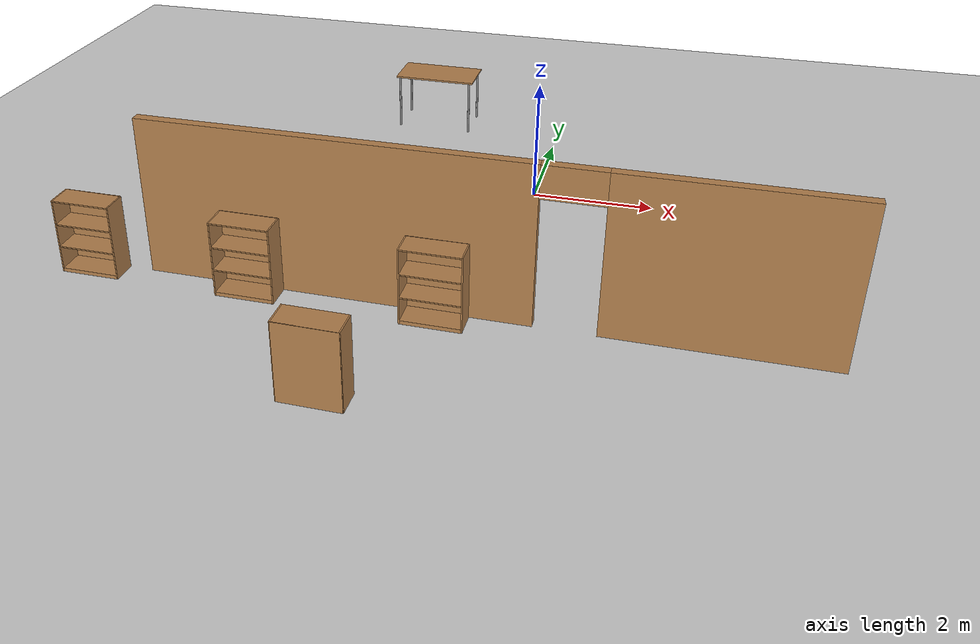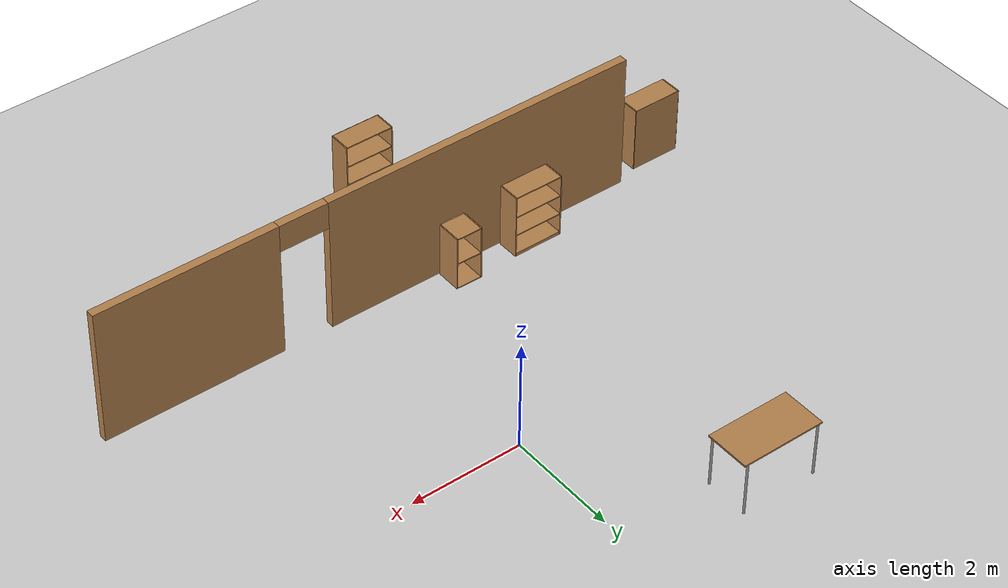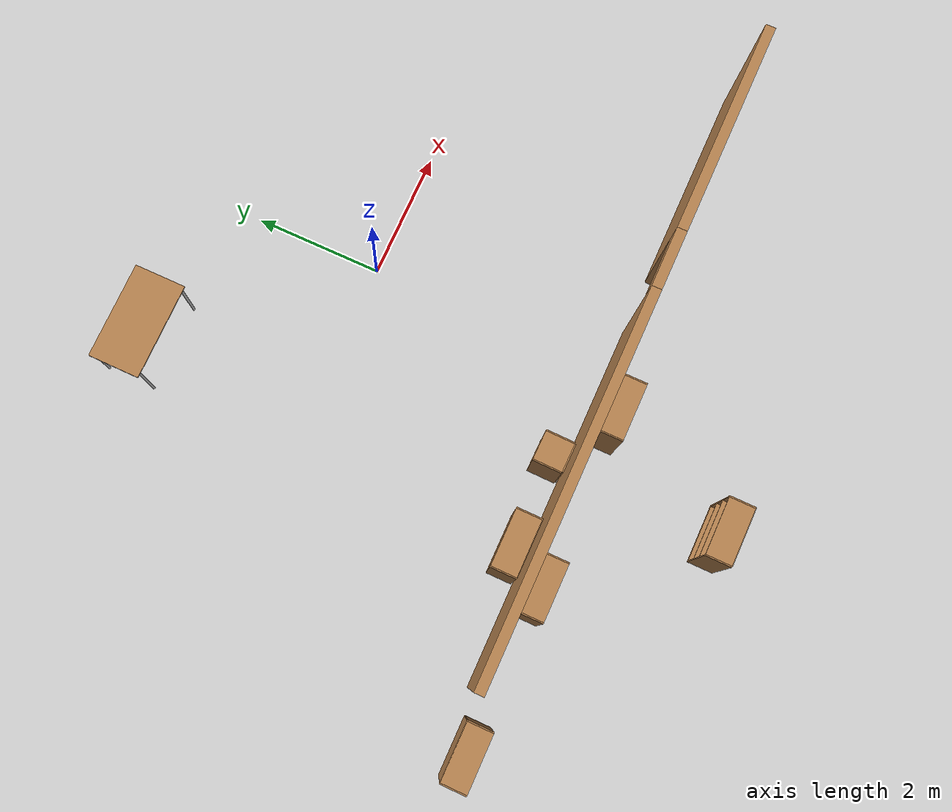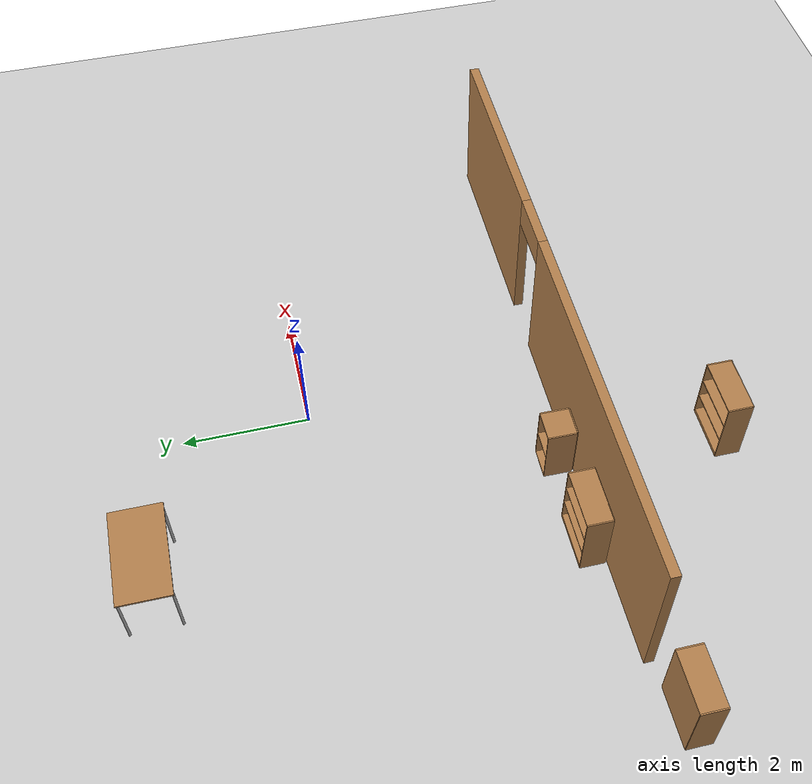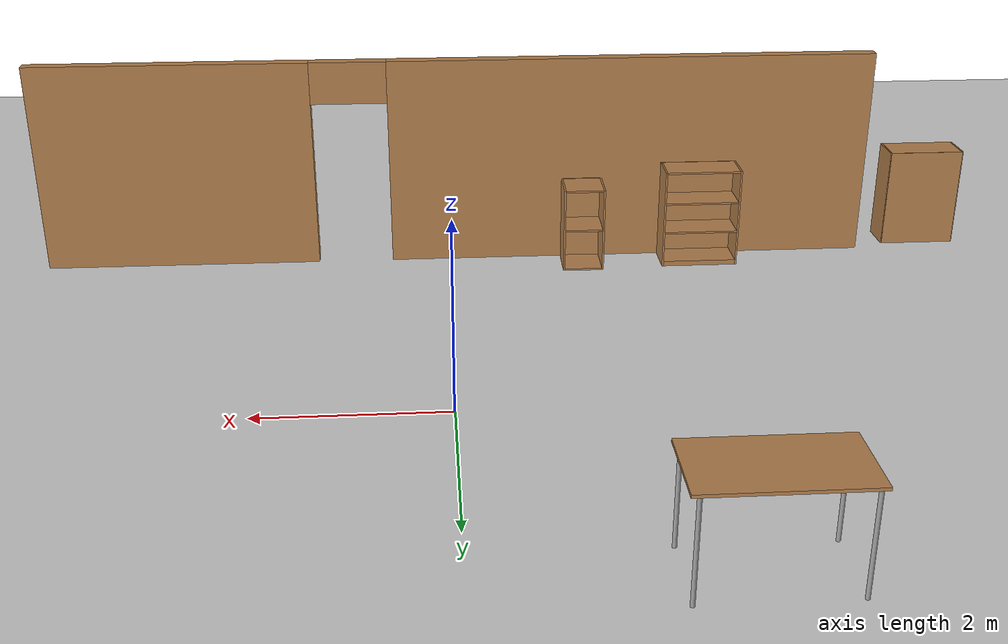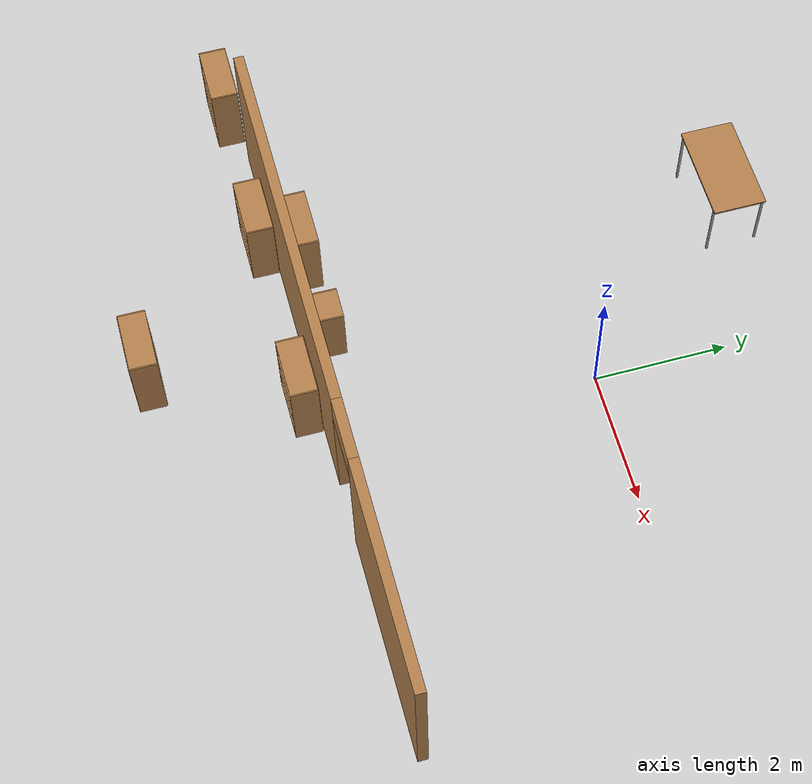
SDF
<sdf version="1.6">
 <world name="default">
  <model name="ground_plane">
   <static>1</static>
   <link name="link">
    <collision name="collision">
     <geometry><plane><normal>0 0 1</normal><size>100 100</size></plane></geometry>
     <surface>
      <contact><collide_bitmask>65535</collide_bitmask></contact>
      <friction><ode><mu>100</mu><mu2>50</mu2></ode></friction>
     </surface>
    </collision>
    <visual name="visual">
     <cast_shadows>0</cast_shadows>
     <geometry><plane><normal>0 0 1</normal><size>100 100</size></plane></geometry>
     <material>
      <script><uri>file://media/materials/scripts/gazebo.material</uri><name>Gazebo/Grey</name></script>
     </material>
    </visual>
   </link>
  </model>
  <model name="test">
   <pose>-0.158987 -3.9109 0 0 -0 0</pose>
   <link name="Wall_1">
    <visual name="Wall_1_Visual_0">
     <pose>-2.08639 0 1.25 0 -0 0</pose>
     <geometry><box><size>5.82721 0.15 2.5</size></box></geometry>
     <material>
      <script><uri>file://media/materials/scripts/gazebo.material</uri><name>Gazebo/Wood</name></script>
      <ambient>1 1 1 1</ambient>
     </material>
     <meta><layer>0</layer></meta>
    </visual>
    <collision name="Wall_1_Collision_0">
     <geometry><box><size>5.82721 0.15 2.5</size></box></geometry>
     <pose>-2.08639 0 1.25 0 -0 0</pose>
    </collision>
    <visual name="Wall_1_Visual_1">
     <pose>3.36361 0 1.25 0 -0 0</pose>
     <geometry><box><size>3.27278 0.15 2.5</size></box></geometry>
     <material>
      <script><uri>file://media/materials/scripts/gazebo.material</uri><name>Gazebo/Wood</name></script>
      <ambient>1 1 1 1</ambient>
     </material>
     <meta><layer>0</layer></meta>
    </visual>
    <collision name="Wall_1_Collision_1">
     <geometry><box><size>3.27278 0.15 2.5</size></box></geometry>
     <pose>3.36361 0 1.25 0 -0 0</pose>
    </collision>
    <visual name="Wall_1_Visual_2">
     <pose>1.27721 0 2.25 0 -0 0</pose>
     <geometry><box><size>0.9 0.15 0.5</size></box></geometry>
     <material>
      <script><uri>file://media/materials/scripts/gazebo.material</uri><name>Gazebo/Wood</name></script>
      <ambient>1 1 1 1</ambient>
     </material>
     <meta><layer>0</layer></meta>
    </visual>
    <collision name="Wall_1_Collision_2">
     <geometry><box><size>0.9 0.15 0.5</size></box></geometry>
     <pose>1.27721 0 2.25 0 -0 0</pose>
    </collision>
   </link>
   <static>1</static>
  </model>
  <model name="cabinet_2">
   <static>1</static>
   <link name="cabinet_bottom_plate">
    <inertial>
     <pose>0 0 -1 0 -0 0</pose>
     <inertia><ixx>2.05</ixx><ixy>0</ixy><ixz>0</ixz><iyy>2.05</iyy><iyz>0</iyz><izz>2.05</izz></inertia>
     <mass>25</mass>
    </inertial>
    <collision name="cabinet_bottom_plate_geom">
     <pose>0 0 0.01 0 -0 0</pose>
     <geometry><box><size>0.45 0.45 0.02</size></box></geometry>
    </collision>
    <visual name="cabinet_bottom_plate_geom_visual">
     <pose>0 0 0.01 0 -0 0</pose>
     <geometry><box><size>0.45 0.45 0.02</size></box></geometry>
     <material>
      <script><uri>file://media/materials/scripts/gazebo.material</uri><name>Gazebo/Wood</name></script>
     </material>
    </visual>
    <collision name="cabinet_bottom_plate_geom_cabinet_back_plate">
     <pose>0.235 0 0.51 0 -0 0</pose>
     <geometry><box><size>0.02 0.45 1.02</size></box></geometry>
    </collision>
    <visual name="cabinet_bottom_plate_geom_cabinet_back_plate_visual">
     <pose>0.235 0 0.51 0 -0 0</pose>
     <geometry><box><size>0.02 0.45 1.02</size></box></geometry>
     <material>
      <script><uri>file://media/materials/scripts/gazebo.material</uri><name>Gazebo/Wood</name></script>
     </material>
    </visual>
    <collision name="cabinet_bottom_plate_geom_cabinet_left_plate">
     <pose>0 0.235 0.51 0 -0 0</pose>
     <geometry><box><size>0.45 0.02 1.02</size></box></geometry>
    </collision>
    <visual name="cabinet_bottom_plate_geom_cabinet_left_plate_visual">
     <pose>0 0.235 0.51 0 -0 0</pose>
     <geometry><box><size>0.45 0.02 1.02</size></box></geometry>
     <material>
      <script><uri>file://media/materials/scripts/gazebo.material</uri><name>Gazebo/Wood</name></script>
     </material>
    </visual>
    <collision name="cabinet_bottom_plate_geom_cabinet_middle_plate">
     <pose>0 0 0.51 0 -0 0</pose>
     <geometry><box><size>0.45 0.45 0.02</size></box></geometry>
    </collision>
    <visual name="cabinet_bottom_plate_geom_cabinet_middle_plate_visual">
     <pose>0 0 0.51 0 -0 0</pose>
     <geometry><box><size>0.45 0.45 0.02</size></box></geometry>
     <material>
      <script><uri>file://media/materials/scripts/gazebo.material</uri><name>Gazebo/Wood</name></script>
     </material>
    </visual>
    <collision name="cabinet_bottom_plate_geom_cabinet_right_plate">
     <pose>0 -0.235 0.51 0 -0 0</pose>
     <geometry><box><size>0.45 0.02 1.02</size></box></geometry>
    </collision>
    <visual name="cabinet_bottom_plate_geom_cabinet_right_plate_visual">
     <pose>0 -0.235 0.51 0 -0 0</pose>
     <geometry><box><size>0.45 0.02 1.02</size></box></geometry>
     <material>
      <script><uri>file://media/materials/scripts/gazebo.material</uri><name>Gazebo/Wood</name></script>
     </material>
    </visual>
    <collision name="cabinet_bottom_plate_geom_cabinet_top_plate">
     <pose>0 0 1.01 0 -0 0</pose>
     <geometry><box><size>0.45 0.45 0.02</size></box></geometry>
    </collision>
    <visual name="cabinet_bottom_plate_geom_cabinet_top_plate_visual">
     <pose>0 0 1.01 0 -0 0</pose>
     <geometry><box><size>0.45 0.45 0.02</size></box></geometry>
     <material>
      <script><uri>file://media/materials/scripts/gazebo.material</uri><name>Gazebo/Wood</name></script>
     </material>
    </visual>
   </link>
   <pose>-1.64879 -3.58023 0 0 0 -1.58489</pose>
  </model>
  <model name="bookshelf_2">
   <static>1</static>
   <link name="link">
    <inertial><mass>1</mass></inertial>
    <collision name="back">
     <pose>0 0.005 0.6 0 -0 0</pose>
     <geometry><box><size>0.9 0.01 1.2</size></box></geometry>
    </collision>
    <visual name="visual1">
     <pose>0 0.005 0.6 0 -0 0</pose>
     <geometry><box><size>0.9 0.01 1.2</size></box></geometry>
     <material>
      <script><uri>file://media/materials/scripts/gazebo.material</uri><name>Gazebo/Wood</name></script>
     </material>
    </visual>
    <collision name="left_side">
     <pose>0.45 -0.195 0.6 0 -0 0</pose>
     <geometry><box><size>0.02 0.4 1.2</size></box></geometry>
    </collision>
    <visual name="visual2">
     <pose>0.45 -0.195 0.6 0 -0 0</pose>
     <geometry><box><size>0.02 0.4 1.2</size></box></geometry>
     <material>
      <script><uri>file://media/materials/scripts/gazebo.material</uri><name>Gazebo/Wood</name></script>
     </material>
    </visual>
    <collision name="right_side">
     <pose>-0.45 -0.195 0.6 0 -0 0</pose>
     <geometry><box><size>0.02 0.4 1.2</size></box></geometry>
    </collision>
    <visual name="visual3">
     <pose>-0.45 -0.195 0.6 0 -0 0</pose>
     <geometry><box><size>0.02 0.4 1.2</size></box></geometry>
     <material>
      <script><uri>file://media/materials/scripts/gazebo.material</uri><name>Gazebo/Wood</name></script>
     </material>
    </visual>
    <collision name="bottom">
     <pose>0 -0.195 0.03 0 -0 0</pose>
     <geometry><box><size>0.88 0.4 0.06</size></box></geometry>
    </collision>
    <visual name="visual4">
     <pose>0 -0.195 0.03 0 -0 0</pose>
     <geometry><box><size>0.88 0.4 0.06</size></box></geometry>
     <material>
      <script><uri>file://media/materials/scripts/gazebo.material</uri><name>Gazebo/Wood</name></script>
     </material>
    </visual>
    <collision name="top">
     <pose>0 -0.195 1.19 0 -0 0</pose>
     <geometry><box><size>0.88 0.4 0.02</size></box></geometry>
    </collision>
    <visual name="visual5">
     <pose>0 -0.195 1.19 0 -0 0</pose>
     <geometry><box><size>0.88 0.4 0.02</size></box></geometry>
     <material>
      <script><uri>file://media/materials/scripts/gazebo.material</uri><name>Gazebo/Wood</name></script>
     </material>
    </visual>
    <collision name="low_shelf">
     <pose>0 -0.195 0.43 0 -0 0</pose>
     <geometry><box><size>0.88 0.4 0.02</size></box></geometry>
    </collision>
    <visual name="visual6">
     <pose>0 -0.195 0.43 0 -0 0</pose>
     <geometry><box><size>0.88 0.4 0.02</size></box></geometry>
     <material>
      <script><uri>file://media/materials/scripts/gazebo.material</uri><name>Gazebo/Wood</name></script>
     </material>
    </visual>
    <collision name="high_shelf">
     <pose>0 -0.195 0.8 0 -0 0</pose>
     <geometry><box><size>0.88 0.4 0.02</size></box></geometry>
    </collision>
    <visual name="visual7">
     <pose>0 -0.195 0.8 0 -0 0</pose>
     <geometry><box><size>0.88 0.4 0.02</size></box></geometry>
     <material>
      <script><uri>file://media/materials/scripts/gazebo.material</uri><name>Gazebo/Wood</name></script>
     </material>
    </visual>
   </link>
   <pose>-3.07917 -3.80961 0 0 -0 3.13898</pose>
  </model>
  <model name="table_0">
   <static>1</static>
   <link name="link">
    <collision name="surface">
     <pose>0 0 1 0 -0 0</pose>
     <geometry><box><size>1.5 0.8 0.03</size></box></geometry>
     <surface><friction><ode><mu>0.6</mu><mu2>0.6</mu2></ode></friction></surface>
    </collision>
    <visual name="visual1">
     <pose>0 0 1 0 -0 0</pose>
     <geometry><box><size>1.5 0.8 0.03</size></box></geometry>
     <material>
      <script><uri>file://media/materials/scripts/gazebo.material</uri><name>Gazebo/Wood</name></script>
     </material>
    </visual>
    <collision name="front_left_leg">
     <pose>0.68 0.38 0.5 0 -0 0</pose>
     <geometry><cylinder><radius>0.02</radius><length>1</length></cylinder></geometry>
    </collision>
    <visual name="front_left_leg">
     <pose>0.68 0.38 0.5 0 -0 0</pose>
     <geometry><cylinder><radius>0.02</radius><length>1</length></cylinder></geometry>
     <material>
      <script><uri>file://media/materials/scripts/gazebo.material</uri><name>Gazebo/Grey</name></script>
     </material>
    </visual>
    <collision name="front_right_leg">
     <pose>0.68 -0.38 0.5 0 -0 0</pose>
     <geometry><cylinder><radius>0.02</radius><length>1</length></cylinder></geometry>
    </collision>
    <visual name="front_right_leg">
     <pose>0.68 -0.38 0.5 0 -0 0</pose>
     <geometry><cylinder><radius>0.02</radius><length>1</length></cylinder></geometry>
     <material>
      <script><uri>file://media/materials/scripts/gazebo.material</uri><name>Gazebo/Grey</name></script>
     </material>
    </visual>
    <collision name="back_right_leg">
     <pose>-0.68 -0.38 0.5 0 -0 0</pose>
     <geometry><cylinder><radius>0.02</radius><length>1</length></cylinder></geometry>
    </collision>
    <visual name="back_right_leg">
     <pose>-0.68 -0.38 0.5 0 -0 0</pose>
     <geometry><cylinder><radius>0.02</radius><length>1</length></cylinder></geometry>
     <material>
      <script><uri>file://media/materials/scripts/gazebo.material</uri><name>Gazebo/Grey</name></script>
     </material>
    </visual>
    <collision name="back_left_leg">
     <pose>-0.68 0.38 0.5 0 -0 0</pose>
     <geometry><cylinder><radius>0.02</radius><length>1</length></cylinder></geometry>
    </collision>
    <visual name="back_left_leg">
     <pose>-0.68 0.38 0.5 0 -0 0</pose>
     <geometry><cylinder><radius>0.02</radius><length>1</length></cylinder></geometry>
     <material>
      <script><uri>file://media/materials/scripts/gazebo.material</uri><name>Gazebo/Grey</name></script>
     </material>
    </visual>
   </link>
   <pose>-2.401 2.69763 0 0 -0 0</pose>
  </model>
  <model name="bookshelf_4">
   <static>1</static>
   <link name="link">
    <inertial><mass>1</mass></inertial>
    <collision name="back">
     <pose>0 0.005 0.6 0 -0 0</pose>
     <geometry><box><size>0.9 0.01 1.2</size></box></geometry>
    </collision>
    <visual name="visual1">
     <pose>0 0.005 0.6 0 -0 0</pose>
     <geometry><box><size>0.9 0.01 1.2</size></box></geometry>
     <material>
      <script><uri>file://media/materials/scripts/gazebo.material</uri><name>Gazebo/Wood</name></script>
     </material>
    </visual>
    <collision name="left_side">
     <pose>0.45 -0.195 0.6 0 -0 0</pose>
     <geometry><box><size>0.02 0.4 1.2</size></box></geometry>
    </collision>
    <visual name="visual2">
     <pose>0.45 -0.195 0.6 0 -0 0</pose>
     <geometry><box><size>0.02 0.4 1.2</size></box></geometry>
     <material>
      <script><uri>file://media/materials/scripts/gazebo.material</uri><name>Gazebo/Wood</name></script>
     </material>
    </visual>
    <collision name="right_side">
     <pose>-0.45 -0.195 0.6 0 -0 0</pose>
     <geometry><box><size>0.02 0.4 1.2</size></box></geometry>
    </collision>
    <visual name="visual3">
     <pose>-0.45 -0.195 0.6 0 -0 0</pose>
     <geometry><box><size>0.02 0.4 1.2</size></box></geometry>
     <material>
      <script><uri>file://media/materials/scripts/gazebo.material</uri><name>Gazebo/Wood</name></script>
     </material>
    </visual>
    <collision name="bottom">
     <pose>0 -0.195 0.03 0 -0 0</pose>
     <geometry><box><size>0.88 0.4 0.06</size></box></geometry>
    </collision>
    <visual name="visual4">
     <pose>0 -0.195 0.03 0 -0 0</pose>
     <geometry><box><size>0.88 0.4 0.06</size></box></geometry>
     <material>
      <script><uri>file://media/materials/scripts/gazebo.material</uri><name>Gazebo/Wood</name></script>
     </material>
    </visual>
    <collision name="top">
     <pose>0 -0.195 1.19 0 -0 0</pose>
     <geometry><box><size>0.88 0.4 0.02</size></box></geometry>
    </collision>
    <visual name="visual5">
     <pose>0 -0.195 1.19 0 -0 0</pose>
     <geometry><box><size>0.88 0.4 0.02</size></box></geometry>
     <material>
      <script><uri>file://media/materials/scripts/gazebo.material</uri><name>Gazebo/Wood</name></script>
     </material>
    </visual>
    <collision name="low_shelf">
     <pose>0 -0.195 0.43 0 -0 0</pose>
     <geometry><box><size>0.88 0.4 0.02</size></box></geometry>
    </collision>
    <visual name="visual6">
     <pose>0 -0.195 0.43 0 -0 0</pose>
     <geometry><box><size>0.88 0.4 0.02</size></box></geometry>
     <material>
      <script><uri>file://media/materials/scripts/gazebo.material</uri><name>Gazebo/Wood</name></script>
     </material>
    </visual>
    <collision name="high_shelf">
     <pose>0 -0.195 0.8 0 -0 0</pose>
     <geometry><box><size>0.88 0.4 0.02</size></box></geometry>
    </collision>
    <visual name="visual7">
     <pose>0 -0.195 0.8 0 -0 0</pose>
     <geometry><box><size>0.88 0.4 0.02</size></box></geometry>
     <material>
      <script><uri>file://media/materials/scripts/gazebo.material</uri><name>Gazebo/Wood</name></script>
     </material>
    </visual>
   </link>
   <pose>-0.691662 -4.01045 0 0 -0 0</pose>
  </model>
  <model name="bookshelf_5">
   <static>1</static>
   <link name="link">
    <inertial><mass>1</mass></inertial>
    <collision name="back">
     <pose>0 0.005 0.6 0 -0 0</pose>
     <geometry><box><size>0.9 0.01 1.2</size></box></geometry>
    </collision>
    <visual name="visual1">
     <pose>0 0.005 0.6 0 -0 0</pose>
     <geometry><box><size>0.9 0.01 1.2</size></box></geometry>
     <material>
      <script><uri>file://media/materials/scripts/gazebo.material</uri><name>Gazebo/Wood</name></script>
     </material>
    </visual>
    <collision name="left_side">
     <pose>0.45 -0.195 0.6 0 -0 0</pose>
     <geometry><box><size>0.02 0.4 1.2</size></box></geometry>
    </collision>
    <visual name="visual2">
     <pose>0.45 -0.195 0.6 0 -0 0</pose>
     <geometry><box><size>0.02 0.4 1.2</size></box></geometry>
     <material>
      <script><uri>file://media/materials/scripts/gazebo.material</uri><name>Gazebo/Wood</name></script>
     </material>
    </visual>
    <collision name="right_side">
     <pose>-0.45 -0.195 0.6 0 -0 0</pose>
     <geometry><box><size>0.02 0.4 1.2</size></box></geometry>
    </collision>
    <visual name="visual3">
     <pose>-0.45 -0.195 0.6 0 -0 0</pose>
     <geometry><box><size>0.02 0.4 1.2</size></box></geometry>
     <material>
      <script><uri>file://media/materials/scripts/gazebo.material</uri><name>Gazebo/Wood</name></script>
     </material>
    </visual>
    <collision name="bottom">
     <pose>0 -0.195 0.03 0 -0 0</pose>
     <geometry><box><size>0.88 0.4 0.06</size></box></geometry>
    </collision>
    <visual name="visual4">
     <pose>0 -0.195 0.03 0 -0 0</pose>
     <geometry><box><size>0.88 0.4 0.06</size></box></geometry>
     <material>
      <script><uri>file://media/materials/scripts/gazebo.material</uri><name>Gazebo/Wood</name></script>
     </material>
    </visual>
    <collision name="top">
     <pose>0 -0.195 1.19 0 -0 0</pose>
     <geometry><box><size>0.88 0.4 0.02</size></box></geometry>
    </collision>
    <visual name="visual5">
     <pose>0 -0.195 1.19 0 -0 0</pose>
     <geometry><box><size>0.88 0.4 0.02</size></box></geometry>
     <material>
      <script><uri>file://media/materials/scripts/gazebo.material</uri><name>Gazebo/Wood</name></script>
     </material>
    </visual>
    <collision name="low_shelf">
     <pose>0 -0.195 0.43 0 -0 0</pose>
     <geometry><box><size>0.88 0.4 0.02</size></box></geometry>
    </collision>
    <visual name="visual6">
     <pose>0 -0.195 0.43 0 -0 0</pose>
     <geometry><box><size>0.88 0.4 0.02</size></box></geometry>
     <material>
      <script><uri>file://media/materials/scripts/gazebo.material</uri><name>Gazebo/Wood</name></script>
     </material>
    </visual>
    <collision name="high_shelf">
     <pose>0 -0.195 0.8 0 -0 0</pose>
     <geometry><box><size>0.88 0.4 0.02</size></box></geometry>
    </collision>
    <visual name="visual7">
     <pose>0 -0.195 0.8 0 -0 0</pose>
     <geometry><box><size>0.88 0.4 0.02</size></box></geometry>
     <material>
      <script><uri>file://media/materials/scripts/gazebo.material</uri><name>Gazebo/Wood</name></script>
     </material>
    </visual>
   </link>
   <pose>-3.48455 -4.00031 0 0 -0 0</pose>
  </model>
  <model name="bookshelf_6">
   <static>1</static>
   <link name="link">
    <inertial><mass>1</mass></inertial>
    <collision name="back">
     <pose>0 0.005 0.6 0 -0 0</pose>
     <geometry><box><size>0.9 0.01 1.2</size></box></geometry>
    </collision>
    <visual name="visual1">
     <pose>0 0.005 0.6 0 -0 0</pose>
     <geometry><box><size>0.9 0.01 1.2</size></box></geometry>
     <material>
      <script><uri>file://media/materials/scripts/gazebo.material</uri><name>Gazebo/Wood</name></script>
     </material>
    </visual>
    <collision name="left_side">
     <pose>0.45 -0.195 0.6 0 -0 0</pose>
     <geometry><box><size>0.02 0.4 1.2</size></box></geometry>
    </collision>
    <visual name="visual2">
     <pose>0.45 -0.195 0.6 0 -0 0</pose>
     <geometry><box><size>0.02 0.4 1.2</size></box></geometry>
     <material>
      <script><uri>file://media/materials/scripts/gazebo.material</uri><name>Gazebo/Wood</name></script>
     </material>
    </visual>
    <collision name="right_side">
     <pose>-0.45 -0.195 0.6 0 -0 0</pose>
     <geometry><box><size>0.02 0.4 1.2</size></box></geometry>
    </collision>
    <visual name="visual3">
     <pose>-0.45 -0.195 0.6 0 -0 0</pose>
     <geometry><box><size>0.02 0.4 1.2</size></box></geometry>
     <material>
      <script><uri>file://media/materials/scripts/gazebo.material</uri><name>Gazebo/Wood</name></script>
     </material>
    </visual>
    <collision name="bottom">
     <pose>0 -0.195 0.03 0 -0 0</pose>
     <geometry><box><size>0.88 0.4 0.06</size></box></geometry>
    </collision>
    <visual name="visual4">
     <pose>0 -0.195 0.03 0 -0 0</pose>
     <geometry><box><size>0.88 0.4 0.06</size></box></geometry>
     <material>
      <script><uri>file://media/materials/scripts/gazebo.material</uri><name>Gazebo/Wood</name></script>
     </material>
    </visual>
    <collision name="top">
     <pose>0 -0.195 1.19 0 -0 0</pose>
     <geometry><box><size>0.88 0.4 0.02</size></box></geometry>
    </collision>
    <visual name="visual5">
     <pose>0 -0.195 1.19 0 -0 0</pose>
     <geometry><box><size>0.88 0.4 0.02</size></box></geometry>
     <material>
      <script><uri>file://media/materials/scripts/gazebo.material</uri><name>Gazebo/Wood</name></script>
     </material>
    </visual>
    <collision name="low_shelf">
     <pose>0 -0.195 0.43 0 -0 0</pose>
     <geometry><box><size>0.88 0.4 0.02</size></box></geometry>
    </collision>
    <visual name="visual6">
     <pose>0 -0.195 0.43 0 -0 0</pose>
     <geometry><box><size>0.88 0.4 0.02</size></box></geometry>
     <material>
      <script><uri>file://media/materials/scripts/gazebo.material</uri><name>Gazebo/Wood</name></script>
     </material>
    </visual>
    <collision name="high_shelf">
     <pose>0 -0.195 0.8 0 -0 0</pose>
     <geometry><box><size>0.88 0.4 0.02</size></box></geometry>
    </collision>
    <visual name="visual7">
     <pose>0 -0.195 0.8 0 -0 0</pose>
     <geometry><box><size>0.88 0.4 0.02</size></box></geometry>
     <material>
      <script><uri>file://media/materials/scripts/gazebo.material</uri><name>Gazebo/Wood</name></script>
     </material>
    </visual>
   </link>
   <pose>-5.9928 -3.97432 0 0 -0 0</pose>
  </model>
  <model name="bookshelf_7">
   <static>1</static>
   <link name="link">
    <inertial><mass>1</mass></inertial>
    <collision name="back">
     <pose>0 0.005 0.6 0 -0 0</pose>
     <geometry><box><size>0.9 0.01 1.2</size></box></geometry>
    </collision>
    <visual name="visual1">
     <pose>0 0.005 0.6 0 -0 0</pose>
     <geometry><box><size>0.9 0.01 1.2</size></box></geometry>
     <material>
      <script><uri>file://media/materials/scripts/gazebo.material</uri><name>Gazebo/Wood</name></script>
     </material>
    </visual>
    <collision name="left_side">
     <pose>0.45 -0.195 0.6 0 -0 0</pose>
     <geometry><box><size>0.02 0.4 1.2</size></box></geometry>
    </collision>
    <visual name="visual2">
     <pose>0.45 -0.195 0.6 0 -0 0</pose>
     <geometry><box><size>0.02 0.4 1.2</size></box></geometry>
     <material>
      <script><uri>file://media/materials/scripts/gazebo.material</uri><name>Gazebo/Wood</name></script>
     </material>
    </visual>
    <collision name="right_side">
     <pose>-0.45 -0.195 0.6 0 -0 0</pose>
     <geometry><box><size>0.02 0.4 1.2</size></box></geometry>
    </collision>
    <visual name="visual3">
     <pose>-0.45 -0.195 0.6 0 -0 0</pose>
     <geometry><box><size>0.02 0.4 1.2</size></box></geometry>
     <material>
      <script><uri>file://media/materials/scripts/gazebo.material</uri><name>Gazebo/Wood</name></script>
     </material>
    </visual>
    <collision name="bottom">
     <pose>0 -0.195 0.03 0 -0 0</pose>
     <geometry><box><size>0.88 0.4 0.06</size></box></geometry>
    </collision>
    <visual name="visual4">
     <pose>0 -0.195 0.03 0 -0 0</pose>
     <geometry><box><size>0.88 0.4 0.06</size></box></geometry>
     <material>
      <script><uri>file://media/materials/scripts/gazebo.material</uri><name>Gazebo/Wood</name></script>
     </material>
    </visual>
    <collision name="top">
     <pose>0 -0.195 1.19 0 -0 0</pose>
     <geometry><box><size>0.88 0.4 0.02</size></box></geometry>
    </collision>
    <visual name="visual5">
     <pose>0 -0.195 1.19 0 -0 0</pose>
     <geometry><box><size>0.88 0.4 0.02</size></box></geometry>
     <material>
      <script><uri>file://media/materials/scripts/gazebo.material</uri><name>Gazebo/Wood</name></script>
     </material>
    </visual>
    <collision name="low_shelf">
     <pose>0 -0.195 0.43 0 -0 0</pose>
     <geometry><box><size>0.88 0.4 0.02</size></box></geometry>
    </collision>
    <visual name="visual6">
     <pose>0 -0.195 0.43 0 -0 0</pose>
     <geometry><box><size>0.88 0.4 0.02</size></box></geometry>
     <material>
      <script><uri>file://media/materials/scripts/gazebo.material</uri><name>Gazebo/Wood</name></script>
     </material>
    </visual>
    <collision name="high_shelf">
     <pose>0 -0.195 0.8 0 -0 0</pose>
     <geometry><box><size>0.88 0.4 0.02</size></box></geometry>
    </collision>
    <visual name="visual7">
     <pose>0 -0.195 0.8 0 -0 0</pose>
     <geometry><box><size>0.88 0.4 0.02</size></box></geometry>
     <material>
      <script><uri>file://media/materials/scripts/gazebo.material</uri><name>Gazebo/Wood</name></script>
     </material>
    </visual>
   </link>
   <pose>-1.69783 -6.454 0 0 -0 3.13746</pose>
  </model>
 </world>
</sdf>
